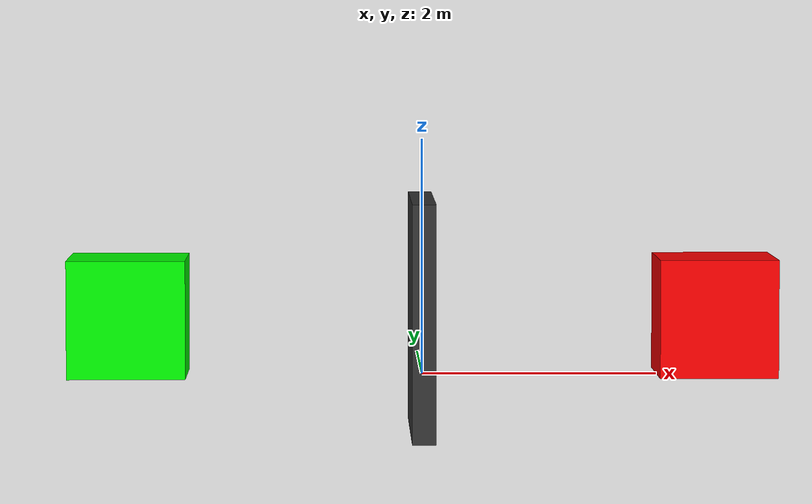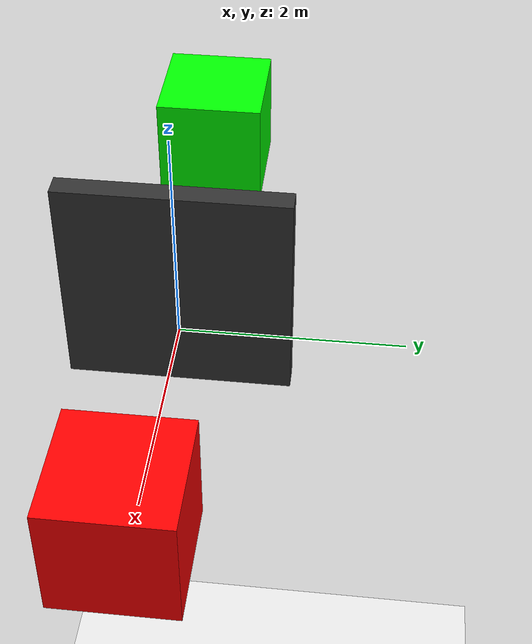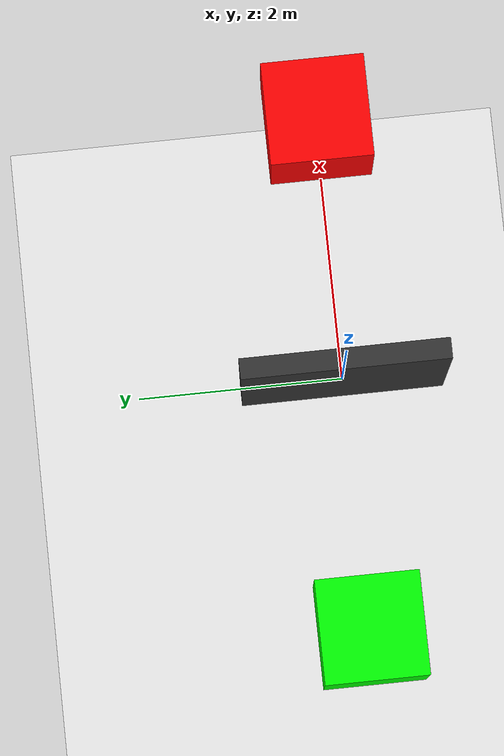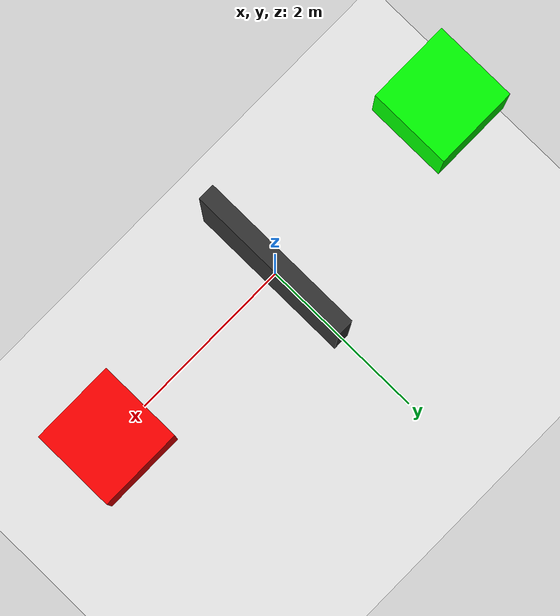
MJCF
<mujoco>
  <option gravity="0 0 -9.81"/>
  <worldbody>
    <body name="ground" pos="0 0 -10">
      <geom type="plane" size="50 50 0.1" rgba="0.92 0.92 0.92 1"/>
    </body>
    <body name="wall" pos="0 0 0.5">
      <geom type="box" size="0.1 1 1" rgba="0.2 0.2 0.2 1"/>
    </body>
    <body name="cart_elastic" pos="-2.5 0 0.5">
      <geom type="box" size="0.5 0.5 0.5" mass="1" rgba="0 1 0 1"/>
      <joint type="free"/>
    </body>
    <body name="cart_inelastic" pos="2.5 0 0.5">
      <geom type="box" size="0.5 0.5 0.5" mass="1" rgba="1 0 0 1"/>
      <joint type="free"/>
    </body>
  </worldbody>
</mujoco>
